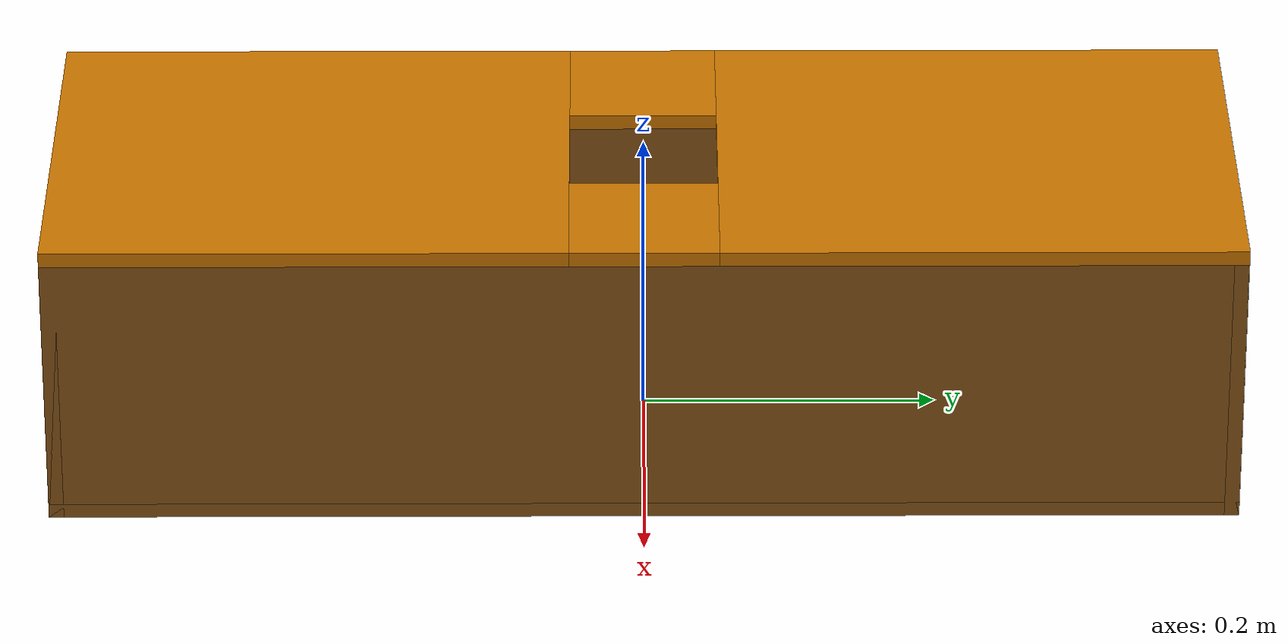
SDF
<?xml version="1.0"?>
<sdf version="1.7">
    <model name="peg_in_hole_box">
        <link name="peg_in_hole_box_link">
            <inertial>
                <inertia>
                    <ixx>1</ixx>
                    <ixy>0</ixy>
                    <ixz>0</ixz>
                    <iyy>1</iyy>
                    <iyz>0</iyz>
                    <izz>1</izz>
                </inertia>
                <mass>1000.0</mass>
            </inertial>
            <visual name="bottom_visual">
                <pose>0 0 0 0 0 0</pose>
                <geometry>
                    <box>
                        <size>0.3 0.8 0.01</size>
                    </box>
                </geometry>
                <material>
                    <diffuse>0.55 0.34 0.1 1.0</diffuse>
                </material>
            </visual>
            <collision name="bottom_collision">
                <pose>0 0 0 0 0 0</pose>
                <geometry>
                    <box>
                        <size>0.3 0.8 0.01</size>
                    </box>
                </geometry>
                <drake:proximity_properties>
                    <drake:compliant_hydroelastic/>
                    <drake:hydroelastic_modulus>1e8</drake:hydroelastic_modulus>
                    <drake:mesh_resolution_hint>1.0</drake:mesh_resolution_hint>
                    <drake:mu_dynamic>0.3</drake:mu_dynamic>
                    <drake:mu_static>0.3</drake:mu_static>
                    <drake:hunt_crossley_dissipation>3.0</drake:hunt_crossley_dissipation>
                </drake:proximity_properties>
            </collision>
            <visual name="top1_visual">
                <pose>0 -0.225 0.19 0 0 0</pose>
                <geometry>
                    <box>
                        <size>0.3 0.35 0.01</size>
                    </box>
                </geometry>
                <material>
                    <diffuse>0.82 0.48 0.0 1.0</diffuse>
                </material>
            </visual>
            <collision name="top1_collision">
                <pose>0 -0.225 0.19 0 0 0</pose>
                <geometry>
                    <box>
                        <size>0.3 0.35 0.01</size>
                    </box>
                </geometry>
                <drake:proximity_properties>
                    <drake:compliant_hydroelastic/>
                    <drake:hydroelastic_modulus>1e8</drake:hydroelastic_modulus>
                    <drake:mesh_resolution_hint>1.0</drake:mesh_resolution_hint>
                    <drake:mu_dynamic>0.3</drake:mu_dynamic>
                    <drake:mu_static>0.3</drake:mu_static>
                    <drake:hunt_crossley_dissipation>3.0</drake:hunt_crossley_dissipation>
                </drake:proximity_properties>
            </collision>
            <visual name="top2_visual">
                <pose>0 0.225 0.19 0 0 0</pose>
                <geometry>
                    <box>
                        <size>0.3 0.35 0.01</size>
                    </box>
                </geometry>
                <material>
                    <diffuse>0.82 0.48 0.0 1.0</diffuse>
                </material>
            </visual>
            <collision name="top2_collision">
                <pose>0 0.225 0.19 0 0 0</pose>
                <geometry>
                    <box>
                        <size>0.3 0.35 0.01</size>
                    </box>
                </geometry>
                <drake:proximity_properties>
                    <drake:compliant_hydroelastic/>
                    <drake:hydroelastic_modulus>1e8</drake:hydroelastic_modulus>
                    <drake:mesh_resolution_hint>1.0</drake:mesh_resolution_hint>
                    <drake:mu_dynamic>0.3</drake:mu_dynamic>
                    <drake:mu_static>0.3</drake:mu_static>
                    <drake:hunt_crossley_dissipation>3.0</drake:hunt_crossley_dissipation>
                </drake:proximity_properties>
            </collision>
            <visual name="top3_visual">
                <pose>-0.1 0 0.19 0 0 0</pose>
                <geometry>
                    <box>
                        <size>0.1 0.1 0.01</size>
                    </box>
                </geometry>
                <material>
                    <diffuse>0.82 0.48 0.0 1.0</diffuse>
                </material>
            </visual>
            <collision name="top3_collision">
                <pose>-0.1 0 0.19 0 0 0</pose>
                <geometry>
                    <box>
                        <size>0.1 0.1 0.01</size>
                    </box>
                </geometry>
                <drake:proximity_properties>
                    <drake:compliant_hydroelastic/>
                    <drake:hydroelastic_modulus>1e8</drake:hydroelastic_modulus>
                    <drake:mesh_resolution_hint>1.0</drake:mesh_resolution_hint>
                    <drake:mu_dynamic>0.3</drake:mu_dynamic>
                    <drake:mu_static>0.3</drake:mu_static>
                    <drake:hunt_crossley_dissipation>3.0</drake:hunt_crossley_dissipation>
                </drake:proximity_properties>
            </collision>
            <visual name="top4_visual">
                <pose>0.1 0 0.19 0 0 0</pose>
                <geometry>
                    <box>
                        <size>0.1 0.1 0.01</size>
                    </box>
                </geometry>
                <material>
                    <diffuse>0.82 0.48 0.0 1.0</diffuse>
                </material>
            </visual>
            <collision name="top4_collision">
                <pose>0.1 0 0.19 0 0 0</pose>
                <geometry>
                    <box>
                        <size>0.1 0.1 0.01</size>
                    </box>
                </geometry>
                <drake:proximity_properties>
                    <drake:compliant_hydroelastic/>
                    <drake:hydroelastic_modulus>1e8</drake:hydroelastic_modulus>
                    <drake:mesh_resolution_hint>1.0</drake:mesh_resolution_hint>
                    <drake:mu_dynamic>0.3</drake:mu_dynamic>
                    <drake:mu_static>0.3</drake:mu_static>
                    <drake:hunt_crossley_dissipation>3.0</drake:hunt_crossley_dissipation>
                </drake:proximity_properties>
            </collision>
            <visual name="side1_visual">
                <pose>0.145 0 0.09 0 0 0</pose>
                <geometry>
                    <box>
                        <size>0.01 0.8 0.19</size>
                    </box>
                </geometry>
                <material>
                    <diffuse>0.55 0.34 0.1 1.0</diffuse>
                </material>
            </visual>
            <collision name="side1_collision">
                <pose>0.145 0 0.09 0 0 0</pose>
                <geometry>
                    <box>
                        <size>0.01 0.8 0.19</size>
                    </box>
                </geometry>
                <drake:proximity_properties>
                    <drake:compliant_hydroelastic/>
                    <drake:hydroelastic_modulus>1e8</drake:hydroelastic_modulus>
                    <drake:mesh_resolution_hint>1.0</drake:mesh_resolution_hint>
                    <drake:mu_dynamic>0.3</drake:mu_dynamic>
                    <drake:mu_static>0.3</drake:mu_static>
                    <drake:hunt_crossley_dissipation>3.0</drake:hunt_crossley_dissipation>
                </drake:proximity_properties>
            </collision>
            <visual name="side2_visual">
                <pose>-0.145 0 0.09 0 0 0</pose>
                <geometry>
                    <box>
                        <size>0.01 0.8 0.19</size>
                    </box>
                </geometry>
                <material>
                    <diffuse>0.55 0.34 0.1 1.0</diffuse>
                </material>
            </visual>
            <collision name="side2_collision">
                <pose>-0.145 0 0.09 0 0 0</pose>
                <geometry>
                    <box>
                        <size>0.01 0.8 0.19</size>
                    </box>
                </geometry>
                <drake:proximity_properties>
                    <drake:compliant_hydroelastic/>
                    <drake:hydroelastic_modulus>1e8</drake:hydroelastic_modulus>
                    <drake:mesh_resolution_hint>1.0</drake:mesh_resolution_hint>
                    <drake:mu_dynamic>0.3</drake:mu_dynamic>
                    <drake:mu_static>0.3</drake:mu_static>
                    <drake:hunt_crossley_dissipation>3.0</drake:hunt_crossley_dissipation>
                </drake:proximity_properties>
            </collision>
            <visual name="side3_visual">
                <pose>0 0.395 0.09 0 0 0</pose>
                <geometry>
                    <box>
                        <size>0.3 0.01 0.19</size>
                    </box>
                </geometry>
                <material>
                    <diffuse>0.55 0.34 0.1 1.0</diffuse>
                </material>
            </visual>
            <collision name="side3_collision">
                <pose>0 0.395 0.09 0 0 0</pose>
                <geometry>
                    <box>
                        <size>0.3 0.01 0.19</size>
                    </box>
                </geometry>
                <drake:proximity_properties>
                    <drake:compliant_hydroelastic/>
                    <drake:hydroelastic_modulus>1e8</drake:hydroelastic_modulus>
                    <drake:mesh_resolution_hint>1.0</drake:mesh_resolution_hint>
                    <drake:mu_dynamic>0.3</drake:mu_dynamic>
                    <drake:mu_static>0.3</drake:mu_static>
                    <drake:hunt_crossley_dissipation>3.0</drake:hunt_crossley_dissipation>
                </drake:proximity_properties>
            </collision>
            <visual name="side4_visual">
                <pose>0 -0.395 0.09 0 0 0</pose>
                <geometry>
                    <box>
                        <size>0.3 0.01 0.19</size>
                    </box>
                </geometry>
                <material>
                    <diffuse>0.55 0.34 0.1 1.0</diffuse>
                </material>
            </visual>
            <collision name="side4_collision">
                <pose>0 -0.395 0.09 0 0 0</pose>
                <geometry>
                    <box>
                        <size>0.3 0.01 0.19</size>
                    </box>
                </geometry>
                <drake:proximity_properties>
                    <drake:compliant_hydroelastic/>
                    <drake:hydroelastic_modulus>1e8</drake:hydroelastic_modulus>
                    <drake:mesh_resolution_hint>1.0</drake:mesh_resolution_hint>
                    <drake:mu_dynamic>0.3</drake:mu_dynamic>
                    <drake:mu_static>0.3</drake:mu_static>
                    <drake:hunt_crossley_dissipation>3.0</drake:hunt_crossley_dissipation>
                </drake:proximity_properties>
            </collision>

        </link>
        <frame name="peg_in_hole_box_bottom_center">
            <pose relative_to="peg_in_hole_box_link">0 0 -0.005 0 0 0</pose>
        </frame>
    </model>
</sdf>
